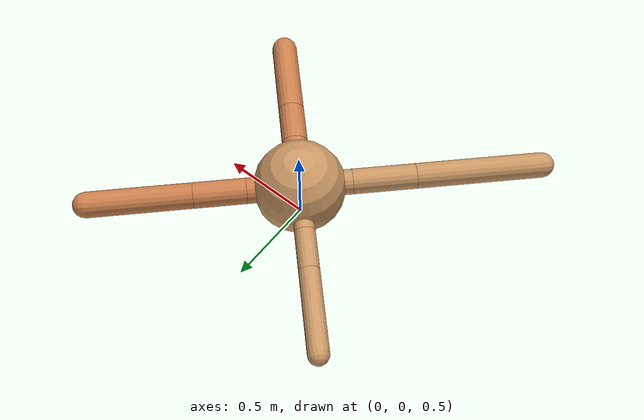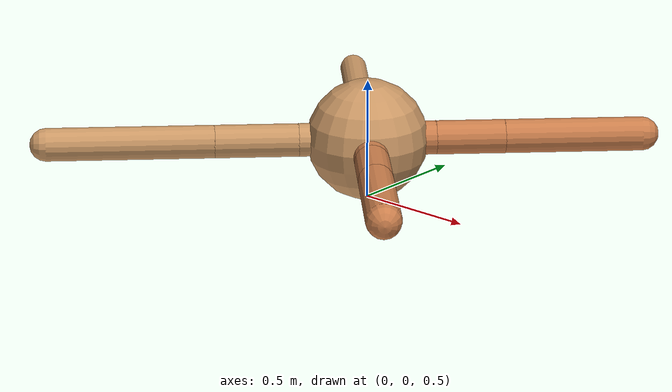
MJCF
<?xml version="1.0" ?>
<mujoco model="ant">

	<compiler angle="degree" coordinate="local" inertiafromgeom="true"/>

	<option integrator="RK4" timestep="0.01"/>

	<custom>

		<numeric data="0.0 0.0 0.55 1.0 0.0 0.0 0.0 0.0 1.0 0.0 -1.0 0.0 -1.0 0.0 1.0" name="init_qpos"/>

	</custom>

	<default>

		<joint armature="1" damping="1" limited="true"/>

		<geom conaffinity="0" condim="3" density="5.0" friction="1.5 0.1 0.1" margin="0.01" rgba="0.8 0.6 0.4 1"/>

	</default>

	<worldbody>

		<body name="torso" pos="0 0 0.75">

			<geom name="torso_geom" pos="0 0 0" size="0.25059791917386015" type="sphere"/>

			<!--joint armature="0" damping="0" limited="false" margin="0.01" name="root" pos="0 0 0" type="free"/-->

			<body name="front_left_leg" pos="0 0 0">

				<geom fromto="0 0 0 0.2 0.2 0" name="aux_1_geom" size="0.07025185881951025" type="capsule" rgba=".8 .5 .3 1"/>

				<body name="aux_1" pos="0.2 0.2 0">

					<joint axis="0 0 1" name="hip_1" pos="0.0 0.0 0.0" range="-40 40" type="hinge"/>

					<geom fromto="0 0 0 0.20098474691319806 0.20098474691319806 0" name="left_leg_geom" size="0.07025185881951025" type="capsule" rgba=".8 .5 .3 1"/>

					<body pos="0.20098474691319806 0.20098474691319806 0" name="front_left_foot">

						<joint axis="-1 1 0" name="ankle_1" pos="0.0 0.0 0.0" range="30 100" type="hinge"/>

						<geom fromto="0 0 0 0.40196949382639613 0.40196949382639613 0" name="left_ankle_geom" size="0.07025185881951025" type="capsule" rgba=".8 .5 .3 1"/>

					</body>

				</body>

			</body>

			<body name="front_right_leg" pos="0 0 0">

				<geom fromto="0 0 0 -0.2 0.2 0" name="aux_2_geom" size="0.05618562944120782" type="capsule"/>

				<body name="aux_2" pos="-0.2 0.2 0">

					<joint axis="0 0 1" name="hip_2" pos="0.0 0.0 0.0" range="-40 40" type="hinge"/>

					<geom fromto="0 0 0 -0.15953589230216572 0.15953589230216572 0" name="right_leg_geom" size="0.05618562944120782" type="capsule"/>

					<body pos="-0.15953589230216572 0.15953589230216572 0" name="front_right_foot">

						<joint axis="1 1 0" name="ankle_2" pos="0.0 0.0 0.0" range="-100 -30" type="hinge"/>

						<geom fromto="0 0 0 -0.31907178460433144 0.31907178460433144 0" name="right_ankle_geom" size="0.05618562944120782" type="capsule"/>

					</body>

				</body>

			</body>

			<body name="left_back_leg" pos="0 0 0">

				<geom fromto="0 0 0 -0.2 -0.2 0" name="aux_3_geom" size="0.06871343857163174" type="capsule"/>

				<body name="aux_3" pos="-0.2 -0.2 0">

					<joint axis="0 0 1" name="hip_3" pos="0.0 0.0 0.0" range="-40 40" type="hinge"/>

					<geom fromto="0 0 0 -0.24377783561915442 -0.24377783561915442 0" name="back_leg_geom" size="0.06871343857163174" type="capsule"/>

					<body pos="-0.24377783561915442 -0.24377783561915442 0" name="left_back_foot">

						<joint axis="-1 1 0" name="ankle_3" pos="0.0 0.0 0.0" range="-100 -30" type="hinge"/>

						<geom fromto="0 0 0 -0.48755567123830884 -0.48755567123830884 0" name="third_ankle_geom" size="0.06871343857163174" type="capsule"/>

					</body>

				</body>

			</body>

			<body name="right_back_leg" pos="0 0 0">

				<geom fromto="0 0 0 0.2 -0.2 0" name="aux_4_geom" size="0.0717629346511096" type="capsule" rgba=".8 .5 .3 1"/>

				<body name="aux_4" pos="0.2 -0.2 0">

					<joint axis="0 0 1" name="hip_4" pos="0.0 0.0 0.0" range="-40 40" type="hinge"/>

					<geom fromto="0 0 0 0.1596364237044661 -0.1596364237044661 0" name="rightback_leg_geom" size="0.0717629346511096" type="capsule" rgba=".8 .5 .3 1"/>

					<body pos="0.1596364237044661 -0.1596364237044661 0" name="right_back_foot">

						<joint axis="1 1 0" name="ankle_4" pos="0.0 0.0 0.0" range="30 100" type="hinge"/>

						<geom fromto="0 0 0 0.3192728474089322 -0.3192728474089322 0" name="fourth_ankle_geom" size="0.0717629346511096" type="capsule" rgba=".8 .5 .3 1"/>

					</body>

				</body>

			</body>

		</body>

	</worldbody>

	<actuator>

		<motor ctrllimited="true" ctrlrange="-1.0 1.0" joint="hip_4" gear="150"/>

		<motor ctrllimited="true" ctrlrange="-1.0 1.0" joint="ankle_4" gear="150"/>

		<motor ctrllimited="true" ctrlrange="-1.0 1.0" joint="hip_1" gear="150"/>

		<motor ctrllimited="true" ctrlrange="-1.0 1.0" joint="ankle_1" gear="150"/>

		<motor ctrllimited="true" ctrlrange="-1.0 1.0" joint="hip_2" gear="150"/>

		<motor ctrllimited="true" ctrlrange="-1.0 1.0" joint="ankle_2" gear="150"/>

		<motor ctrllimited="true" ctrlrange="-1.0 1.0" joint="hip_3" gear="150"/>

		<motor ctrllimited="true" ctrlrange="-1.0 1.0" joint="ankle_3" gear="150"/>

	</actuator>

</mujoco>
